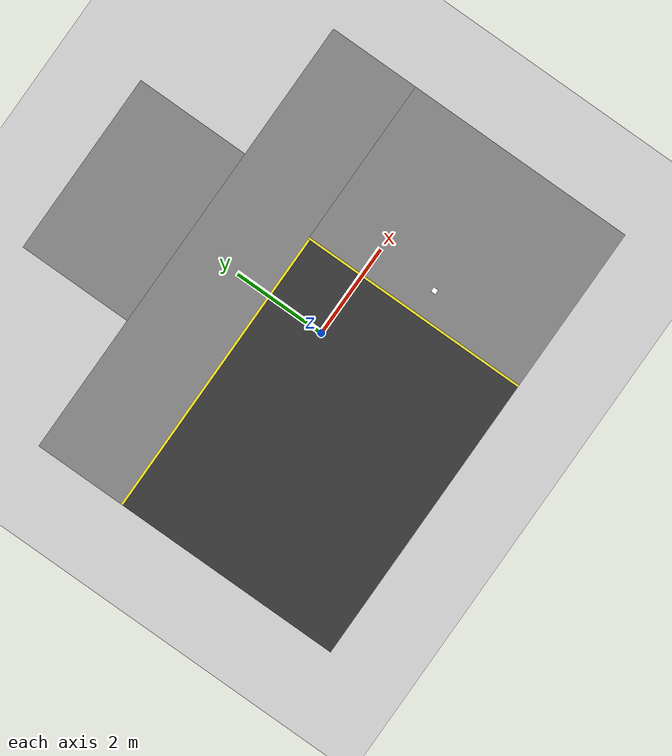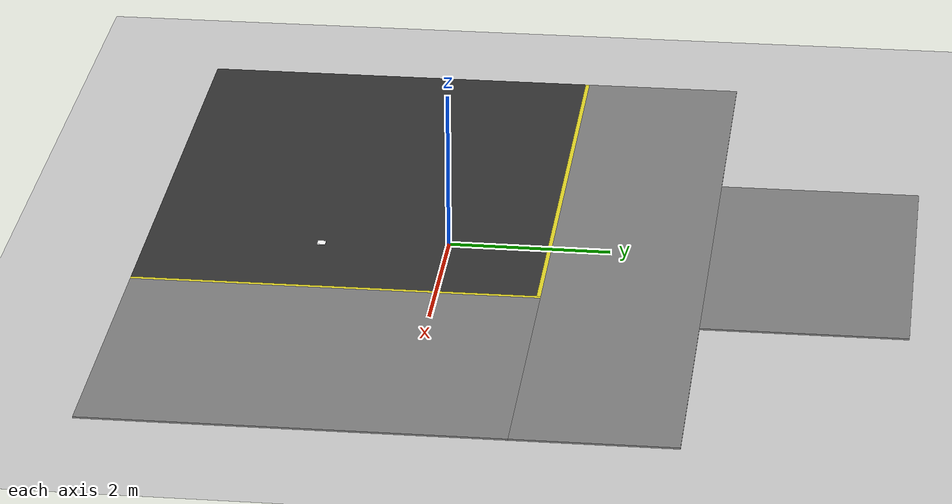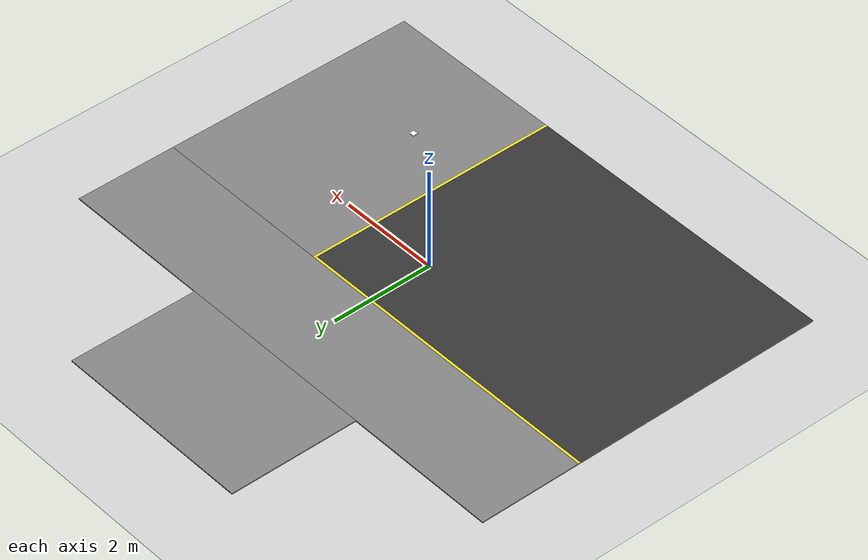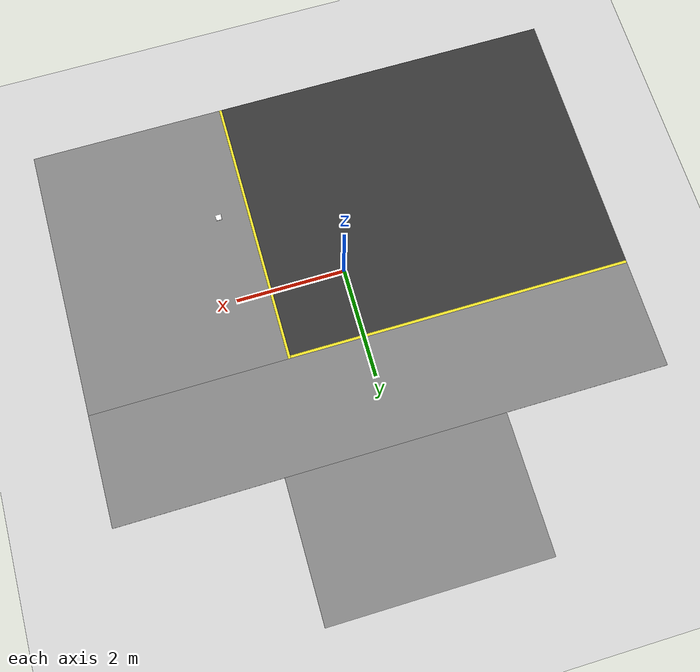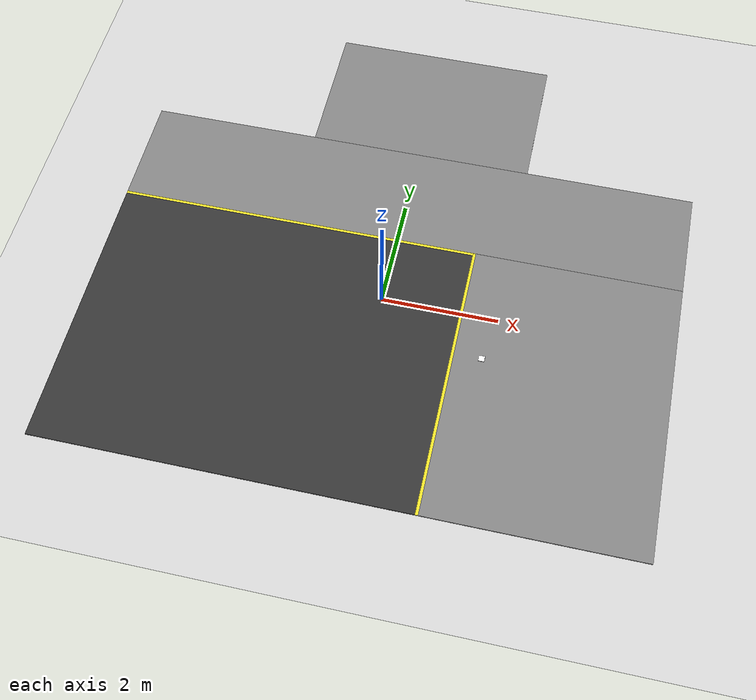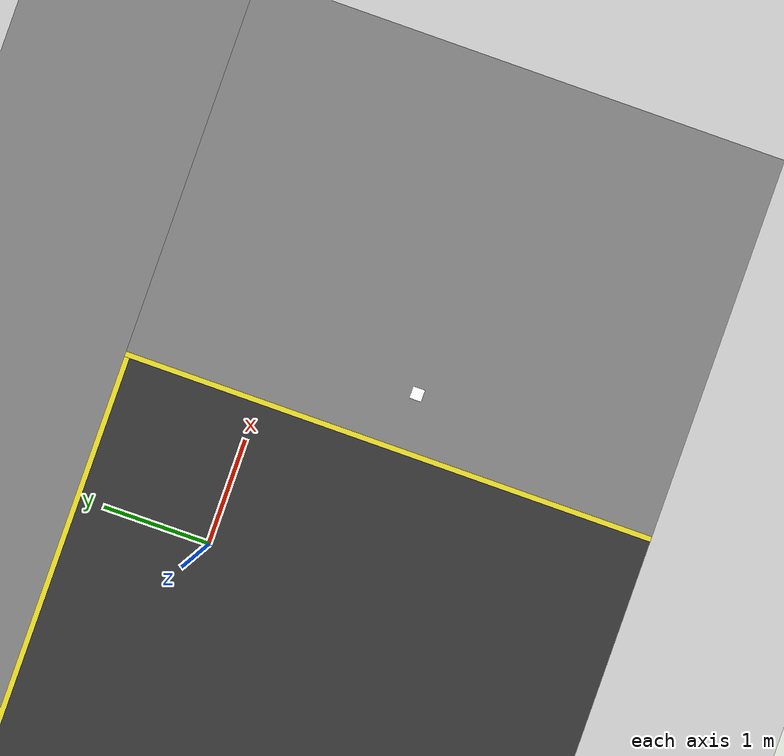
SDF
<sdf version="1.9">
 <world name="empty">
  <physics name="1ms" type="ignored">
   <max_step_size>0.001</max_step_size>
   <real_time_factor>1</real_time_factor>
   <real_time_update_rate>1000</real_time_update_rate>
  </physics>
  <plugin name="gz::sim::systems::Physics" filename="ignition-gazebo-physics-system"/>
  <plugin name="gz::sim::systems::UserCommands" filename="ignition-gazebo-user-commands-system"/>
  <plugin name="gz::sim::systems::SceneBroadcaster" filename="ignition-gazebo-scene-broadcaster-system"/>
  <plugin name="gz::sim::systems::Contact" filename="ignition-gazebo-contact-system"/>
  <plugin name="gz::sim::systems::Sensors" filename="ignition-gazebo-sensors-system">
   <render_engine>ogre</render_engine>
  </plugin>
  <gravity>0 0 -9.8</gravity>
  <magnetic_field>6e-06 2.3e-05 -4.2e-05</magnetic_field>
  <atmosphere type="adiabatic"/>
  <scene><ambient>0.4 0.4 0.4 1</ambient><background>0.7 0.7 0.7 1</background><shadows>true</shadows></scene>
  <model name="lar_floor">
   <pose>0 -0.25 0 0 -0 0</pose>
   <include>
    <uri>model://weaver_bringup/meshes/models/lar_floor</uri>
    <name>floor</name>
    <static>1</static>
   </include>
  </model>
  <include>
   <pose>1.9 -1.3 0.87 0 0 1.57</pose>
   <uri>model://weaver_bringup/meshes/models/apriltags</uri>
   <name>apriltag_0</name>
  </include>
  <model name="ground_plane">
   <static>true</static>
   <link name="link">
    <collision name="collision">
     <geometry><plane><normal>0 0 1</normal><size>100 100</size></plane></geometry>
    </collision>
    <visual name="visual">
     <geometry><plane><normal>0 0 1</normal><size>100 100</size></plane></geometry>
     <material>
      <ambient>0.8 0.8 0.8 1</ambient>
      <diffuse>0.8 0.8 0.8 1</diffuse>
      <specular>0.8 0.8 0.8 1</specular>
     </material>
    </visual>
    <inertial>
     <mass>1</mass>
     <inertia><ixx>1</ixx><ixy>0</ixy><ixz>0</ixz><iyy>1</iyy><iyz>0</iyz><izz>1</izz></inertia>
    </inertial>
   </link>
  </model>
  <light name="sun" type="directional">
   <pose>0 0 10 0 -0 0</pose>
   <intensity>1</intensity>
   <direction>-0.5 0.1 -0.9</direction>
   <diffuse>0.8 0.8 0.8 1</diffuse>
   <specular>0.2 0.2 0.2 1</specular>
   <attenuation>
    <range>1000</range>
    <linear>0.01</linear>
    <constant>0.90000000000000002</constant>
    <quadratic>0.001</quadratic>
   </attenuation>
   <spot><inner_angle>0</inner_angle><outer_angle>0</outer_angle><falloff>0</falloff></spot>
  </light>
  <light name="light1" type="directional">
   <pose>0.0 0 4 0 -0 0</pose>
   <intensity>1</intensity>
   <direction>-0.5 0.1 -0.9</direction>
   <diffuse>0.8 0.8 0.8 1</diffuse>
   <specular>0.2 0.2 0.2 1</specular>
   <attenuation>
    <range>1000</range>
    <linear>0.01</linear>
    <constant>0.90000000000000002</constant>
    <quadratic>0.001</quadratic>
   </attenuation>
   <spot><inner_angle>0</inner_angle><outer_angle>0</outer_angle><falloff>0</falloff></spot>
  </light>
  <light name="light2" type="directional">
   <pose>2.0 0 4 0 -0 0</pose>
   <intensity>1</intensity>
   <direction>-0.5 0.1 -0.9</direction>
   <diffuse>0.8 0.8 0.8 1</diffuse>
   <specular>0.2 0.2 0.2 1</specular>
   <attenuation>
    <range>1000</range>
    <linear>0.01</linear>
    <constant>0.90000000000000002</constant>
    <quadratic>0.001</quadratic>
   </attenuation>
   <spot><inner_angle>0</inner_angle><outer_angle>0</outer_angle><falloff>0</falloff></spot>
  </light>
 </world>
</sdf>

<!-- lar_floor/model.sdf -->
<sdf version="1.6">
  <model name="lar_floor">
    <link name='floor'>
      <pose frame=''>0 0 0 0 0 0</pose>
      <gravity>1</gravity>
      <self_collide>0</self_collide>
      <kinematic>0</kinematic>
      <visual name='visual_1'>
        <pose frame=''>3.2 -0.985 0.01 0 -0 0</pose>
        <geometry>
          <box>
            <size>3.6 5.03 0.02</size>
          </box>
        </geometry>
        <material>
          <ambient>0.5 0.5 0.5 1</ambient>
          <diffuse>0.5 0.5 0.5 1</diffuse>
          <specular>0.1 0.1 0.1 1</specular>
        </material>
        <cast_shadows>0</cast_shadows>
        <transparency>0</transparency>
      </visual>
      <visual name='visual_2'>
        <pose frame=''>0 4.75 0.01 0 -0 0</pose>
        <geometry>
          <box>
            <size>4 2.5 0.02</size>
          </box>
        </geometry>
        <material>
          <ambient>0.5 0.5 0.5 1</ambient>
          <diffuse>0.5 0.5 0.5 1</diffuse>
          <specular>0.1 0.1 0.1 1</specular>
        </material>
        <cast_shadows>0</cast_shadows>
        <transparency>0</transparency>
      </visual>
      <visual name='visual_3'>
        <pose frame=''>-1.825 -1.01 0.01 0 -0 0</pose>
        <geometry>
          <box>
            <size>6.35 4.98 0.02</size>
          </box>
        </geometry>
        <material>
          <ambient>0.2 0.2 0.2 1</ambient>
          <diffuse>0.2 0.2 0.2 1</diffuse>
          <specular>0.1 0.1 0.1 1</specular>
        </material>
        <cast_shadows>0</cast_shadows>
        <transparency>0</transparency>
      </visual>
      <visual name='visual_4'>
        <pose frame=''>1.375 -0.985 0.01 0 -0 0</pose>
        <geometry>
          <box>
            <size>0.05 5.03 0.02</size>
          </box>
        </geometry>
        <material>
          <script>
          <uri>file://media/materials/scripts/gazebo.material</uri>
          <name>Gazebo/DarkYellow  </name>
          </script>
        </material>
        <cast_shadows>0</cast_shadows>
        <transparency>0</transparency>
      </visual>
      <visual name='visual_5'>
        <pose frame=''>-1.825 1.505 0.01 0 -0 0</pose>
        <geometry>
          <box>
            <size>6.35 0.05 0.02</size>
          </box>
        </geometry>
        <material>
          <script>
          <uri>file://media/materials/scripts/gazebo.material</uri>
          <name>Gazebo/DarkYellow  </name>
          </script>
        </material>
        <cast_shadows>0</cast_shadows>
        <transparency>0</transparency>
      </visual>
      <visual name='visual_6'>
        <pose frame=''>0 2.515 0.01 0 -0 0</pose>
        <geometry>
          <box>
            <size>10 1.97 0.02</size>
          </box>
        </geometry>
        <material>
          <ambient>0.5 0.5 0.5 1</ambient>
          <diffuse>0.5 0.5 0.5 1</diffuse>
          <specular>0.1 0.1 0.1 1</specular>
        </material>
        <cast_shadows>0</cast_shadows>
        <transparency>0</transparency>
      </visual>
      <collision name='collision_1'>
        <max_contacts>10</max_contacts>
        <pose frame=''>0 0 0.01 0 -0 0</pose>
        <geometry>
          <box>
            <size>10 7.0 0.1</size>
          </box>
        </geometry>
        <surface>
          <friction>
            <ode/>
          </friction>
          <bounce/>
          <contact>
            <ode/>
          </contact>
        </surface>
      </collision>
      <collision name='collision_2'>
        <max_contacts>10</max_contacts>
        <pose frame=''>0 4.75 0.01 0 -0 0</pose>
        <geometry>
          <box>
            <size>4 2.5 0.1</size>
          </box>
        </geometry>
        <surface>
          <friction>
            <ode/>
          </friction>
          <bounce/>
          <contact>
            <ode/>
          </contact>
        </surface>
      </collision>
    </link>
    <static>1</static>
    <allow_auto_disable>1</allow_auto_disable>
  </model>
</sdf>

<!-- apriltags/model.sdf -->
<sdf version="1.6">
  <model name="apriltag">
    <static>true</static>
    <link name="link">
      <visual name="visual">
        <geometry>
         <box>
          <size>0.1 0.1 0.01</size>
        </box>
        </geometry>
        <material>
          <diffuse>1 1 1 1</diffuse>
          <pbr>
            <metal>
              <albedo_map>materials/textures/tag36h11-0.png</albedo_map>
            </metal>
          </pbr>
        </material>
      </visual>
    </link>
  </model>
</sdf>
